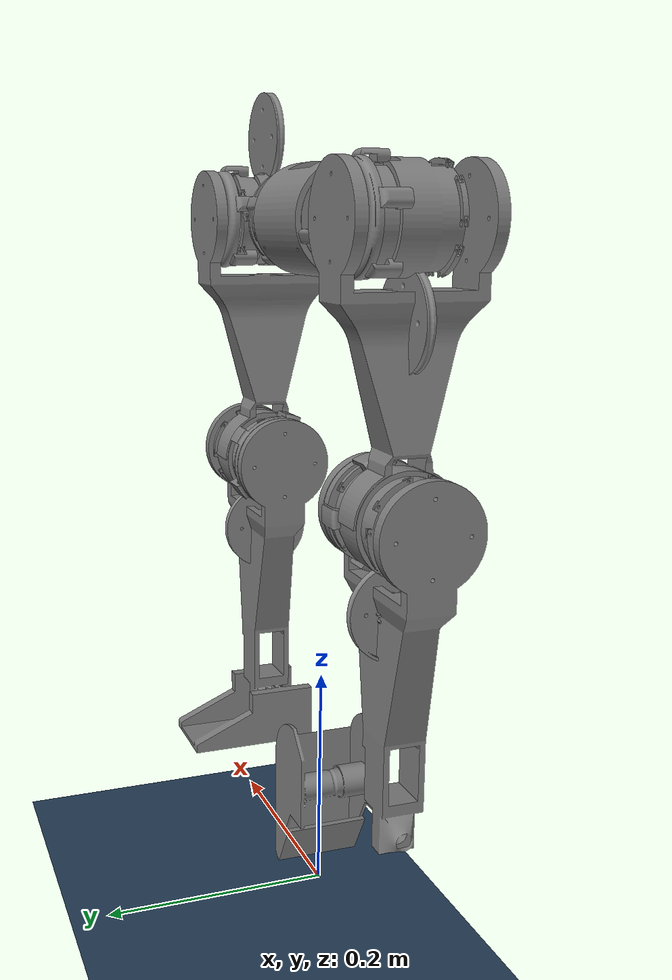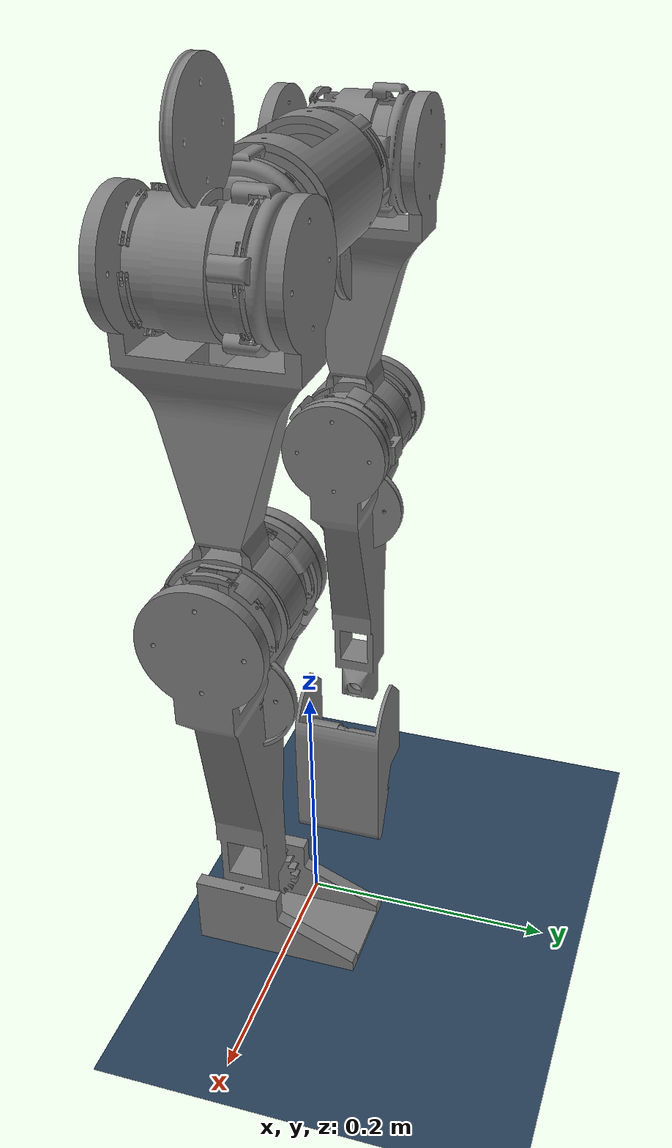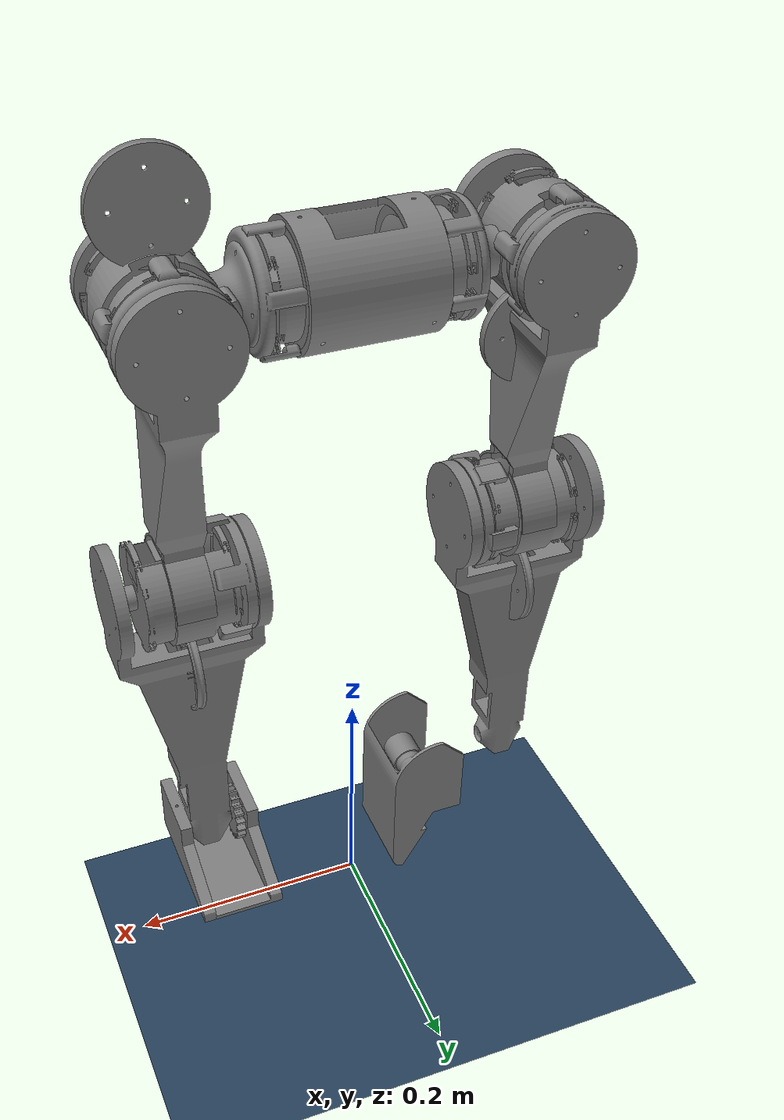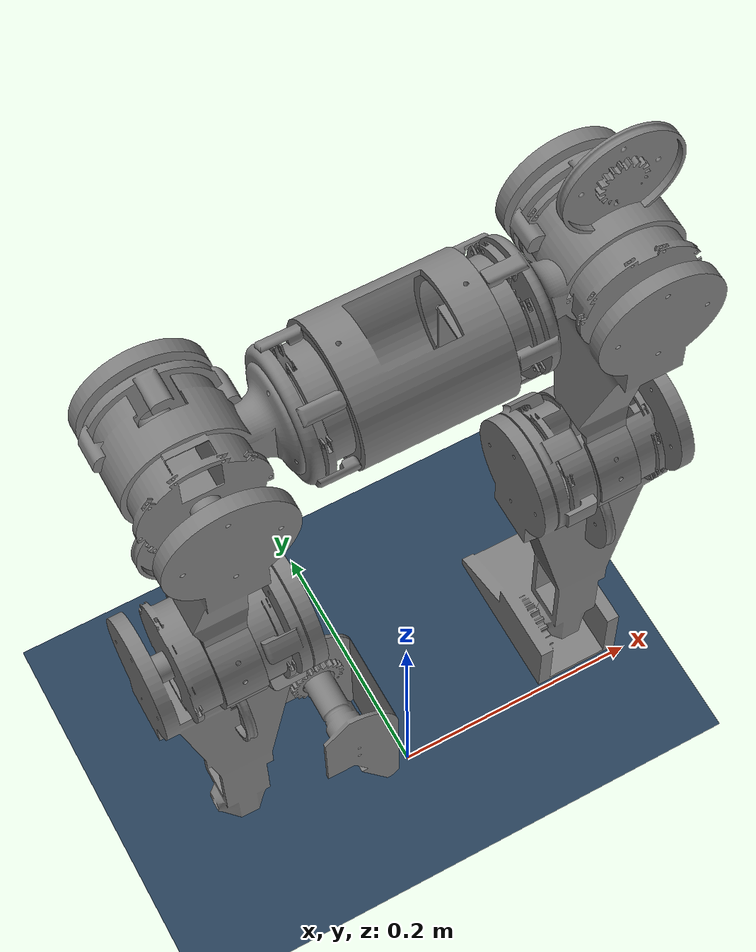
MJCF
<mujoco model="Flexwalk">

  <compiler angle="radian"/>
  <option gravity="0 0 -9.81"/>
  <default>
    <joint damping="5" armature="0.01"/>
  </default>
 <statistic meansize="0.05"/>

  <visual>
    <headlight diffuse="0.6 0.6 0.6" ambient="0.3 0.3 0.3" specular="0 0 0"/>
    <rgba haze="0.15 0.25 0.35 1"/>
    <global azimuth="160" elevation="-10"/>
    <quality shadowsize="8192"/>
  </visual>

  <asset>
    <mesh name="Calf_link" file="meshes/Calf_link.stl"/>
    <mesh name="Hip_Pitch_giver" file="meshes/Hip_Pitch_giver.stl"/>
    <mesh name="Hip_Pitch_motor_holder" file="meshes/Hip_Pitch_motor_holder.stl"/>
    <mesh name="Hip_Roll_Motor_Holder" file="meshes/Hip_Roll_Motor_Holder.stl"/>
    <mesh name="Hip_Roll_giver" file="meshes/Hip_Roll_giver.stl"/>
    <mesh name="Hip_Support_Roll_Giver" file="meshes/Hip_Support_Roll_Giver.stl"/>
    <mesh name="Hips_connector" file="meshes/Hips_connector.stl"/>
    <mesh name="Knee_Pitch_giver" file="meshes/Knee_Pitch_giver.stl"/>
    <mesh name="Knee_Pitch_motor_holder" file="meshes/Knee_Pitch_motor_holder.stl"/>
    <mesh name="Left_foot" file="meshes/Left_foot.stl"/>
    <mesh name="Right_foot" file="meshes/Right_foot.stl"/>
    <mesh name="Right_foot_cover" file="meshes/Right_foot_cover.stl"/>
    <mesh name="Support_knee_pitch_giver" file="meshes/Support_knee_pitch_giver.stl"/>
    <mesh name="Thigh_link" file="meshes/Thigh_link.stl"/>

    <texture type="skybox" builtin="gradient" rgb1="0.3 0.5 0.7" rgb2="0 0 0" width="512" height="3072"/>
    <texture type="2d" name="groundplane" builtin="checker" mark="edge" rgb1="0.2 0.3 0.4" rgb2="0.1 0.2 0.3"
      markrgb="0.8 0.8 0.8" width="300" height="300"/>
    <material name="groundplane" texture="groundplane" texuniform="true" texrepeat="5 5" reflectance="0.2"/>
  </asset>

  <worldbody>
    <light pos="0 0 1.5" dir="0 0 -1" directional="true"/>
    <geom name="floor" size="0 0 0.05" type="plane" material="groundplane" contype="1" conaffinity="1" friction="0.8 0.1 0.1"/>

      <body
        name="hips_connector"
        pos="0 0 0.6"
        quat="9.38184e-07 -0.707105 0.707108 -9.38187e-07">

       <freejoint name="world_to_hip_joint"/>
        <inertial
          pos="-1.3588e-17 1.28071e-11 0.0044039"
          mass="0.153407"
          fullinertia="0.000275111 0.000302809 0.000303046 0 0 8.65233e-15"/>

        <geom
          name="hips_connector_geom0"
          type="mesh"
          mesh="Hips_connector"
          pos="0 0 -2.87792e-18"/>

        <!-- LEFT LEG                                                   -->

        <body
          name="hip_pitch_motor_holder_1"
          pos="-3.03577e-18 0.04 -0.04209"
          quat="1.761e-12 -1.32679e-06 1 -1.32679e-06">

          <inertial
            pos="6.17932e-05 0.00733354 -0.0422518"
            mass="0.0665385"
            fullinertia="5.0856e-05 7.99353e-05 5.15416e-05 -3.49399e-08 4.03677e-09 1.72148e-07"/>

          <geom
            name="hip_pitch_motor_holder_1_geom0"
            type="mesh"
            mesh="Hip_Pitch_motor_holder"
            pos="0 0.03 -0.0540976"/>

          <body
            name="hip_pitch_giver"
            pos="-2.6744e-18 0.03515 -0.0420426"
            quat="1.76038e-12 1.32679e-06 1 1.32679e-06">

            <joint
              name="left_hip_pitch"
              type="hinge"
              axis="0 -1 0"
              limited="true"
              range="-1.57 1.57"/>

            <inertial
              pos="2.23008e-11 -0.000625946 -7.44825e-12"
              mass="0.0622539"
              fullinertia="3.48069e-05 6.50536e-05 3.48069e-05 1.94953e-14 -2.22559e-14 -8.07314e-15"/>

            <geom
              name="hip_pitch_giver_geom0"
              type="mesh"
              mesh="Hip_Pitch_giver"
              pos="0 -0.0068 -0.012055"/>

            <body
              name="hip_roll_motor_holder"
              pos="1.19326e-17 0.0055 0.03"
              quat="1 1.6513e-31 -1.66534e-16 7.2723e-31">

              <inertial
                pos="0.00115294 0.0447105 -0.029539"
                mass="0.139283"
                fullinertia="0.000214662 0.000112846 0.000196218 -3.28005e-06 -2.76536e-07 -1.02511e-06"/>

              <geom
                name="hip_roll_motor_holder_geom0"
                type="mesh"
                mesh="Hip_Roll_Motor_Holder"
                pos="-1.14188e-17 -0.0123 -0.042055"/>

              <body
                name="hip_roll_giver"
                pos="0.04175 0.06 -0.03"
                quat="0.707105 -0.707108 1.96262e-17 3.60455e-23">

                <joint
                  name="left_hip_roll"
                  type="hinge"
                  axis="-1 0 0"
                  limited="true"
                  range="-0.35 0.35"/>

                <inertial
                  pos="0.00427403 -1.47914e-12 6.32288e-13"
                  mass="0.064611"
                  fullinertia="7.05023e-05 3.80162e-05 3.80162e-05 0 0 0"/>

                <geom
                  name="hip_roll_giver_geom0"
                  type="mesh"
                  mesh="Hip_Roll_giver"
                  pos="-0.032 -0.0723 -0.012055"/>

                <body
                  name="hip_support_roll_giver_1"
                  pos="-0.075 -3.85095e-17 -1.11022e-16"
                  quat="0.707105 -0.707108 9.46193e-23 -5.15187e-17">

                  <inertial
                    pos="-0.00133328 1.14586e-12 4.47718e-13"
                    mass="0.0632597"
                    fullinertia="7.02704e-05 3.78885e-05 3.78885e-05 0 0 0"/>

                  <geom
                    name="hip_support_roll_giver_1_geom0"
                    type="mesh"
                    mesh="Hip_Support_Roll_Giver"
                    pos="0.044 -0.0723 -0.012055"/>
                </body>

                <body
                  name="thigh_link"
                  pos="0.011 0.03 -2.77556e-17"
                  quat="0.707105 -0.707108 -5.40682e-23 2.94393e-17">

                  <inertial
                    pos="-0.0487322 7.95783e-05 -0.0737465"
                    mass="0.306707"
                    fullinertia="0.000935953 0.00144387 0.000681281 -2.52387e-09 1.29164e-06 2.43435e-06"/>

                  <geom
                    name="thigh_link_geom0"
                    type="mesh"
                    mesh="Thigh_link"
                    pos="-0.068 0.120831 -0.508422"/>

                  <body
                    name="knee_pitch_motor_holder"
                    pos="-0.0478918 0.000656042 -0.252888"
                    quat="0.707105 -5.00404e-16 -4.48328e-17 -0.707108">

                    <inertial
                      pos="0.00664123 -8.11425e-05 0.000628222"
                      mass="0.0944902"
                      fullinertia="0.000118858 9.32195e-05 0.000101528 -1.27591e-07 -3.43641e-07 -4.81669e-09"/>

                    <geom
                      name="knee_pitch_motor_holder_geom0"
                      type="mesh"
                      mesh="Knee_Pitch_motor_holder"
                      pos="0.0045 -0.0723 -0.012055"/>

                    <body
                      name="knee_pitch_giver_1"
                      pos="0.03625 -1.99493e-17 5.55112e-17"
                      quat="0.707105 0.707108 -3.13038e-15 -2.19322e-15">

                      <joint
                        name="left_knee_pitch"
                        type="hinge"
                        axis="-1 0 0"
                        limited="true"
                        range="-2.0944 2.0944"/>

                      <inertial
                        pos="0.00443636 -3.44877e-13 -4.35468e-14"
                        mass="0.0673682"
                        fullinertia="7.52653e-05 4.03808e-05 4.03808e-05 0 0 0"/>

                      <geom
                        name="knee_pitch_giver_1_geom0"
                        type="mesh"
                        mesh="Knee_Pitch_giver"
                        pos="-0.032 -0.0723 -0.012055"/>

                      <body
                        name="calf_link"
                        pos="0.011 -2.77556e-17 -4.42354e-17"
                        quat="1 -3.19189e-16 2.23086e-15 -1.17614e-15">

                        <inertial
                          pos="-0.0466904 -0.0887847 -3.99395e-05"
                          mass="0.288034"
                          fullinertia="0.00229665 0.000483546 0.00262332 3.31967e-05 3.04701e-08 -1.55886e-06"/>

                        <geom
                          name="calf_link_geom0"
                          type="mesh"
                          mesh="Calf_link"
                          pos="-0.105 -0.045 0"/>

                        <body
                          name="left_foot"
                          pos="-0.0382431 -0.254819 -0.000643039"
                          quat="0.707105 1.93384e-14 0.707108 -1.93383e-14">

                          <joint
                            name="left_ankle_pitch"
                            type="hinge"
                            axis="-1.22465e-16 1.08202e-14 -1"
                            limited="true"
                            range="-0.785398 0.785398"/>

                          <inertial
                            pos="-0.0119462 -0.00954337 -0.0247906"
                            mass="0.104954"
                            fullinertia="5.371e-05 0.000116294 0.000112144 -1.80851e-05 3.80718e-06 7.63279e-06"/>

                          <geom
                            name="left_foot_geom0"
                            type="mesh"
                            mesh="Left_foot"
                            pos="-0.0211332 0.000162697 -0.129191"
                            contype="1"
                            conaffinity="1"
                            friction="0.8 0.1 0.1"/>

                          <body
                            name="left_foot_cover__2_"
                            pos="-6.93889e-18 -1.11022e-16 0.024"
                            quat="1 1.38778e-17 -5.5511e-17 1.66534e-16">

                            <inertial
                              pos="0 0 0"
                              mass="1e-09"
                              fullinertia="4e-14 4e-14 4e-14 0 0 0"/>
                          </body>

                        </body>
                      </body>

                      <body
                        name="support_knee_pitch_giver_1"
                        pos="-0.075 -5.55112e-17 -3.98986e-17"
                        quat="1 4.71845e-16 2.13891e-15 -1.21778e-15">

                        <inertial
                          pos="-0.00149647 1.11855e-14 -2.03969e-14"
                          mass="0.0660169"
                          fullinertia="7.50333e-05 4.02519e-05 4.02519e-05 0 0 0"/>

                        <geom
                          name="support_knee_pitch_giver_1_geom0"
                          type="mesh"
                          mesh="Support_knee_pitch_giver"
                          pos="0.044 -0.0723 -0.012055"/>
                      </body>

                    </body>
                  </body>
                </body>
              </body>
            </body>
          </body>
        </body>

        <!-- RIGHT LEG                                                  -->

        <body
          name="hip_pitch_motor_holder"
          pos="-3.03577e-18 -0.04 -0.04209"
          quat="1.32679e-06 1 5.55129e-17 -1.45717e-15">

          <inertial
            pos="6.17932e-05 0.00733354 -0.0422518"
            mass="0.0665385"
            fullinertia="5.0856e-05 7.99353e-05 5.15416e-05 -3.49399e-08 4.03677e-09 1.72148e-07"/>

          <geom
            name="hip_pitch_motor_holder_geom0"
            type="mesh"
            mesh="Hip_Pitch_motor_holder"
            pos="0 0.03 -0.0540976"/>

          <body
            name="hip_pitch_giver_1"
            pos="-4.02881e-21 0.03515 -0.0420426"
            quat="1 -3.59972e-16 1.41554e-15 -6.12325e-17">

            <joint
              name="right_hip_pitch"
              type="hinge"
              axis="0 1 -1.22465e-16"
              limited="true"
              range="-1.57 1.57"/>

            <inertial
              pos="2.23008e-11 -0.000625946 -7.44825e-12"
              mass="0.0622539"
              fullinertia="3.48069e-05 6.50536e-05 3.48069e-05 1.94953e-14 -2.22559e-14 -8.07314e-15"/>

            <geom
              name="hip_pitch_giver_1_geom0"
              type="mesh"
              mesh="Hip_Pitch_giver"
              pos="0 -0.0068 -0.012055"/>

            <body
              name="hip_roll_motor_holder_1"
              pos="3.63798e-19 0.0055 -0.03"
              quat="1 2.23263e-16 -4.16333e-17 5.29425e-16">

              <inertial
                pos="0.00115294 0.0447105 0.030461"
                mass="0.139283"
                fullinertia="0.000214662 0.000112846 0.000196218 -3.28005e-06 -2.76536e-07 -1.02511e-06"/>

              <geom
                name="hip_roll_motor_holder_1_geom0"
                type="mesh"
                mesh="Hip_Roll_Motor_Holder"
                pos="-3.63798e-19 -0.0123 0.017945"/>

              <body
                name="hip_roll_giver_1"
                pos="0.03175 0.06 0.03"
                quat="0.707105 -0.707108 -1.17758e-16 3.53271e-16">

                <joint
                  name="right_hip_roll"
                  type="hinge"
                  axis="1 0 1.22465e-16"
                  limited="true"
                  range="-0.35 0.35"/>

                <inertial
                  pos="0.00427403 -1.47915e-12 6.32284e-13"
                  mass="0.064611"
                  fullinertia="7.05023e-05 3.80162e-05 3.80162e-05 0 0 0"/>

                <geom
                  name="hip_roll_giver_1_geom0"
                  type="mesh"
                  mesh="Hip_Roll_giver"
                  pos="-0.032 -0.0723 -0.012055"/>

                <body
                  name="hip_support_roll_giver"
                  pos="-0.075 -4.54484e-17 -5.55112e-17"
                  quat="0.707105 0.707108 -3.72897e-16 6.84864e-22">

                  <inertial
                    pos="-0.00133328 1.14586e-12 4.4772e-13"
                    mass="0.0632597"
                    fullinertia="7.02704e-05 3.78885e-05 3.78885e-05 0 0 0"/>

                  <geom
                    name="hip_support_roll_giver_geom0"
                    type="mesh"
                    mesh="Hip_Support_Roll_Giver"
                    pos="0.044 -0.0723 -0.012055"/>
                </body>

                <body
                  name="thigh_link_1"
                  pos="0.011 -0.03 -5.55112e-17"
                  quat="0.707105 0.707108 -7.26168e-16 -5.88782e-16">

                  <inertial
                    pos="-0.0487322 7.95783e-05 -0.0737465"
                    mass="0.306707"
                    fullinertia="0.000935953 0.00144387 0.000681281 -2.52387e-09 1.29164e-06 2.43435e-06"/>

                  <geom
                    name="thigh_link_1_geom0"
                    type="mesh"
                    mesh="Thigh_link"
                    pos="-0.068 0.120831 -0.508422"/>

                  <body
                    name="knee_pitch_motor_holder_1"
                    pos="-0.0478918 0.000656042 -0.252888"
                    quat="-9.38184e-07 0.707105 0.707108 -9.38187e-07">

                    <inertial
                      pos="0.00664123 -8.11425e-05 0.000628222"
                      mass="0.0944902"
                      fullinertia="0.000118858 9.32195e-05 0.000101528 -1.27591e-07 -3.43641e-07 -4.81669e-09"/>

                    <geom
                      name="knee_pitch_motor_holder_1_geom0"
                      type="mesh"
                      mesh="Knee_Pitch_motor_holder"
                      pos="0.0045 -0.0723 -0.012055"/>

                    <body
                      name="knee_pitch_giver"
                      pos="0.03625 -1.73472e-17 1.11022e-16"
                      quat="0.707105 -0.707108 1.5718e-15 7.06542e-15">

                      <joint
                        name="right_knee_pitch"
                        type="hinge"
                        axis="1 1.22465e-16 0"
                        limited="true"
                        range="-2.0944 2.0944"/>

                      <inertial
                        pos="0.00443636 -3.44877e-13 -4.35468e-14"
                        mass="0.0673682"
                        fullinertia="7.52653e-05 4.03808e-05 4.03808e-05 0 0 0"/>

                      <geom
                        name="knee_pitch_giver_geom0"
                        type="mesh"
                        mesh="Knee_Pitch_giver"
                        pos="-0.032 -0.0723 -0.012055"/>

                      <body
                        name="calf_link_1"
                        pos="0.011 -1.11022e-16 0"
                        quat="-1.75849e-12 1.32679e-06 1 -1.32679e-06">

                        <inertial
                          pos="0.0483096 -0.0887847 -3.99395e-05"
                          mass="0.288034"
                          fullinertia="0.00229665 0.000483546 0.00262332 3.31967e-05 3.04701e-08 -1.55886e-06"/>

                        <geom
                          name="calf_link_1_geom0"
                          type="mesh"
                          mesh="Calf_link"
                          pos="-0.01 -0.045 0"/>

                        <body
                          name="right_foot"
                          pos="0.0487569 -0.254819 -0.000643039"
                          quat="0.707105 1.93384e-14 0.707108 -1.93383e-14">

                          <joint
                            name="right_ankle_pitch"
                            type="hinge"
                            axis="-1.22465e-16 1.09426e-14 -1"
                            limited="true"
                            range="-0.785398 0.785398"/>

                          <inertial
                            pos="-0.0119462 -0.00954337 0.0247906"
                            mass="0.104954"
                            fullinertia="5.371e-05 0.000116294 0.000112144 -1.80851e-05 -3.80718e-06 -7.63279e-06"/>

                          <geom
                            name="right_foot_geom0"
                            type="mesh"
                            mesh="Right_foot"
                            pos="-0.0211332 0.000162697 -0.0461908"
                            contype="1"
                            conaffinity="1"
                            friction="0.8 0.1 0.1"/>

                          <body
                            name="right_foot_cover"
                            pos="-7.80626e-18 1.11022e-16 -0.024"
                            quat="1 1.38778e-17 -5.5511e-17 1.66534e-16">

                            <inertial
                              pos="-0.0115055 -0.00626797 0.00296657"
                              mass="0.0535667"
                              fullinertia="1.29327e-05 4.79415e-05 5.99728e-05 -9.18268e-06 2.06038e-08 1.12246e-08"/>

                            <geom
                              name="right_foot_cover_geom0"
                              type="mesh"
                              mesh="Right_foot_cover"
                              pos="-0.0211332 0.000162697 -0.157191"/>
                          </body>

                        </body>
                      </body>

                      <body
                        name="support_knee_pitch_giver"
                        pos="-0.075 -1.11022e-16 -4.25007e-17"
                        quat="1 -1.48493e-15 -1.07379e-15 -4.74621e-15">

                        <inertial
                          pos="-0.00149647 1.11994e-14 -2.03969e-14"
                          mass="0.0660169"
                          fullinertia="7.50333e-05 4.02519e-05 4.02519e-05 0 0 0"/>

                        <geom
                          name="support_knee_pitch_giver_geom0"
                          type="mesh"
                          mesh="Support_knee_pitch_giver"
                          pos="0.044 -0.0723 -0.012055"/>
                      </body>

                    </body>
                  </body>
                </body>
              </body>
            </body>
          </body>
        </body>

      </body>

  </worldbody>

  <keyframe>
    <key
      name="initial"
      qpos="0 0 0 1 0 0 0 0 0 0 0 0 0 0 0"/>
  </keyframe>

  <actuator>

    <position
      name="left_hip_pitch_motor"
      joint="left_hip_pitch"
      kp="100"
      ctrlrange="-1.57 1.57"/>

    <position
      name="left_hip_roll_motor"
      joint="left_hip_roll"
      kp="100"
      ctrlrange="-0.35 0.35"/>

    <position
      name="left_knee_pitch_motor"
      joint="left_knee_pitch"
      kp="100"
      ctrlrange="-2.0944 2.0944"/>

    <position
      name="left_ankle_pitch_motor"
      joint="left_ankle_pitch"
      kp="100"
      ctrlrange="-0.785398 0.785398"/>

    <position
      name="right_hip_pitch_motor"
      joint="right_hip_pitch"
      kp="100"
      ctrlrange="-1.57 1.57"/>

    <position
      name="right_hip_roll_motor"
      joint="right_hip_roll"
      kp="100"
      ctrlrange="-0.35 0.35"/>

    <position
      name="right_knee_pitch_motor"
      joint="right_knee_pitch"
      kp="100"
      ctrlrange="-2.0944 2.0944"/>

    <position
      name="right_ankle_pitch_motor"
      joint="right_ankle_pitch"
      kp="100"
      ctrlrange="-0.785398 0.785398"/>

  </actuator>
  <contact>

      <pair
          geom1="floor"
          geom2="left_foot_geom0"
          friction="1 0.005 0.0001"
          solref="0.02 1"
          solimp="0.9 0.95 0.001"/>

      <pair
          geom1="floor"
          geom2="right_foot_geom0"
          friction="1 0.005 0.0001"
          solref="0.02 1"
          solimp="0.9 0.95 0.001"/>

  </contact>
</mujoco>
